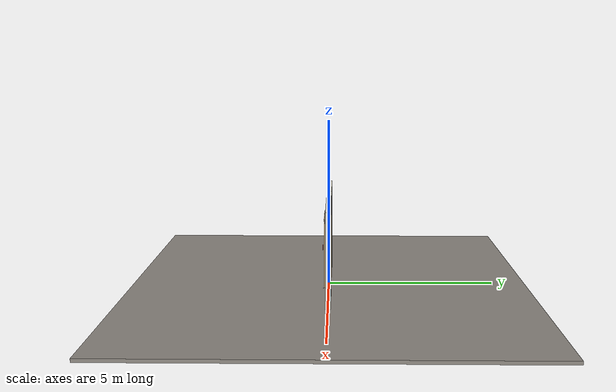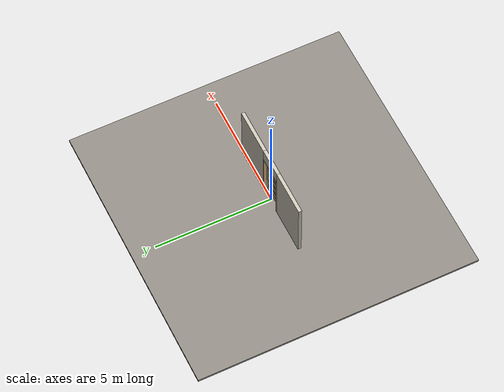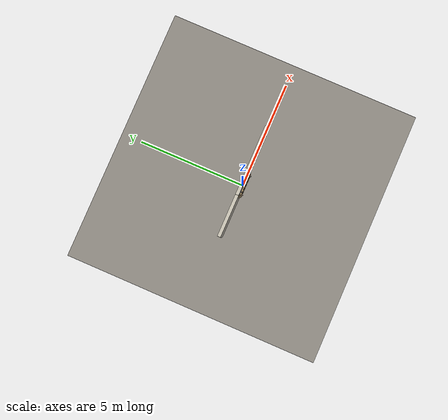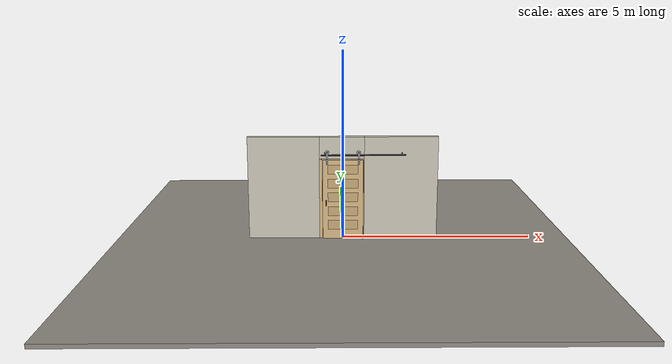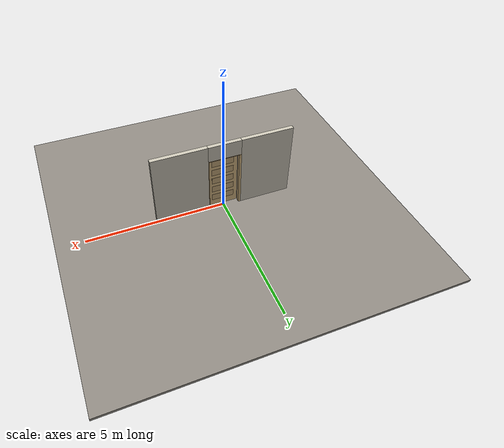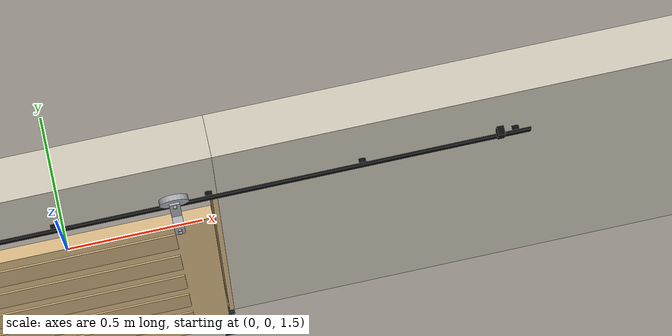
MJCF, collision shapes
<?xml version="1.0" ?>
<mujoco model="db0759_sliding_single_full">
  <compiler angle="radian" meshdir="../../hardware" texturedir="../../textures" autolimits="true" inertiafromgeom="false"/>
  <option timestep="0.002" integrator="implicitfast" cone="elliptic" impratio="10" noslip_iterations="3">
    <flag multiccd="enable"/>
  </option>
  <size memory="16M"/>
  <default>
    <geom condim="4" solref="0.005 1" solimp="0.95 0.99 0.001"/>
    <joint solreflimit="0.005 1" solimplimit="0.95 0.99 0.001"/>
    <tendon solreflimit="0.005 1"/>
    <equality solref="0.002 1"/>
  </default>
  <visual>
    <headlight ambient="0.4 0.4 0.4" diffuse="0.7 0.7 0.7" specular="0.2 0.2 0.2"/>
    <quality shadowsize="4096"/>
    <map znear="0.01" zfar="60"/>
  </visual>
  <asset>
    <mesh name="pull_1e5d69a91a" file="pull_1e5d69a91a.obj"/>
    <material name="mat_floor" rgba="0.55 0.53 0.5 1" specular="0.2" shininess="0.15" reflectance="0"/>
    <material name="mat_wall" rgba="0.78 0.76 0.7 1" specular="0.2" shininess="0.1" reflectance="0"/>
    <material name="mat_frame" rgba="0.82 0.7 0.5 1" specular="0.2" shininess="0.45" reflectance="0"/>
    <material name="mat_track" rgba="0.05 0.05 0.05 1" specular="0.38" shininess="0.3" reflectance="0.12"/>
    <material name="mat_leaf" rgba="0.82 0.7 0.5 1" specular="0.2" shininess="0.45" reflectance="0"/>
    <material name="mat_leaf_panel" rgba="0.754 0.644 0.46 1" specular="0.2" shininess="0.45" reflectance="0"/>
    <material name="mat_roller" rgba="0.65 0.66 0.68 1" specular="0.74" shininess="0.5" reflectance="0.36"/>
    <material name="mat_op_stainless" rgba="0.75 0.76 0.77 1" specular="0.8" shininess="0.65" reflectance="0.4"/>
    <material name="mat_hook" rgba="0.75 0.76 0.77 1" specular="0.8" shininess="0.65" reflectance="0.4"/>
    <texture name="skybox" type="skybox" builtin="gradient" rgb1="0.6 0.7 0.85" rgb2="0.9 0.92 0.95" width="256" height="256"/>
  </asset>
  <worldbody>
    <light name="sun" pos="1.5 -2.5 4" dir="-0.3 0.5 -0.8" directional="true" diffuse="0.8 0.8 0.8" specular="0.3 0.3 0.3" castshadow="true"/>
    <light name="fill" pos="-1.5 2.5 3" dir="0.3 -0.5 -0.7" directional="true" diffuse="0.35 0.35 0.4" castshadow="false"/>
    <camera name="robot_view" pos="0 -2.644375 1.817425" xyaxes="1 0 0 0 0.26963 0.962964" fovy="52"/>
    <camera name="far_view" pos="0 2.644375 1.817425" xyaxes="-1 0 0 0 -0.26963 0.962964" fovy="52"/>
    <camera name="iso" pos="2.009725 -2.221275 2.240525" xyaxes="0.741536 0.670913 0 -0.242917 0.268487 0.932151" fovy="46"/>
    <camera name="detail_handle" pos="-0.2635 -0.9965 1.28" xyaxes="0.97561 0.219512 0 -0.070934 0.315262 0.94635" fovy="38"/>
    <geom name="floor" type="box" size="6 6 0.05" pos="0 0 -0.05" material="mat_floor" group="0" contype="1" conaffinity="1" friction="0.8 0.005 0.0001" density="2400"/>
    <geom name="wall_left" type="box" size="0.93875 0.0725 1.377" pos="-1.56125 0 1.377" material="mat_wall" group="0" contype="1" conaffinity="1" friction="0.6 0.005 0.0001" density="800"/>
    <geom name="wall_right" type="box" size="0.96875 0.0725 1.377" pos="1.53125 0 1.377" material="mat_wall" group="0" contype="1" conaffinity="1" friction="0.6 0.005 0.0001" density="800"/>
    <geom name="wall_header" type="box" size="0.5925 0.0725 0.2905" pos="-0.03 0 2.4635" material="mat_wall" group="0" contype="1" conaffinity="1" friction="0.6 0.005 0.0001" density="800"/>
    <geom name="jamb_r" type="box" size="0.0095 0.0725 1.077" pos="0.553 0 1.077" material="mat_frame" group="0" contype="1" conaffinity="1" friction="0.6 0.005 0.0001" density="300"/>
    <geom name="jamb_head" type="box" size="0.5625 0.0725 0.0095" pos="0 0 2.1635" material="mat_frame" group="0" contype="1" conaffinity="1" friction="0.6 0.005 0.0001" density="300"/>
    <geom name="flat_track" type="box" size="1.117 0.004 0.02" pos="0.5335 -0.0945 2.274" material="mat_track" group="0" contype="1" conaffinity="1" friction="0.6 0.005 0.0001" density="7850"/>
    <geom name="track_standoff_0" type="cylinder" size="0.012 0.009" pos="-0.5335 -0.0815 2.274" quat="0.707107 -0.707107 0 0" material="mat_track" group="1" contype="0" conaffinity="0" density="7850"/>
    <geom name="track_standoff_1" type="cylinder" size="0.012 0.009" pos="0 -0.0815 2.274" quat="0.707107 -0.707107 0 0" material="mat_track" group="1" contype="0" conaffinity="0" density="7850"/>
    <geom name="track_standoff_2" type="cylinder" size="0.012 0.009" pos="0.5335 -0.0815 2.274" quat="0.707107 -0.707107 0 0" material="mat_track" group="1" contype="0" conaffinity="0" density="7850"/>
    <geom name="track_standoff_3" type="cylinder" size="0.012 0.009" pos="1.067 -0.0815 2.274" quat="0.707107 -0.707107 0 0" material="mat_track" group="1" contype="0" conaffinity="0" density="7850"/>
    <geom name="track_standoff_4" type="cylinder" size="0.012 0.009" pos="1.6005 -0.0815 2.274" quat="0.707107 -0.707107 0 0" material="mat_track" group="1" contype="0" conaffinity="0" density="7850"/>
    <geom name="leaf_track_stop_l" type="box" size="0.012 0.016 0.027" pos="-0.4755 -0.0945 2.319" material="mat_track" group="0" contype="1" conaffinity="1" friction="0.6 0.005 0.0001" density="7850"/>
    <geom name="leaf_track_stop_r" type="box" size="0.012 0.016 0.027" pos="1.5425 -0.0945 2.319" material="mat_track" group="0" contype="1" conaffinity="1" friction="0.6 0.005 0.0001" density="7850"/>
    <geom name="jamb_latch_0" type="box" size="0.0395 0.0725 1.077" pos="-0.583 0 1.077" material="mat_frame" group="0" contype="1" conaffinity="1" friction="0.6 0.005 0.0001" density="300"/>
    <geom name="floor_guide_n" type="box" size="0.028 0.004 0.009" pos="0.5335 -0.1415 0.009" material="mat_track" group="0" contype="1" conaffinity="1" friction="0.6 0.005 0.0001" density="7850"/>
    <geom name="floor_guide_n_foot" type="box" size="0.028 0.018 0.002" pos="0.5335 -0.1555 0.002" material="mat_track" group="0" contype="1" conaffinity="1" friction="0.6 0.005 0.0001" density="7850"/>
    <geom name="floor_guide_p" type="box" size="0.028 0.004 0.009" pos="0.5335 -0.0875 0.009" material="mat_track" group="0" contype="1" conaffinity="1" friction="0.6 0.005 0.0001" density="7850"/>
    <geom name="floor_guide_p_foot" type="box" size="0.028 0.018 0.002" pos="0.5335 -0.0735 0.002" material="mat_track" group="0" contype="1" conaffinity="1" friction="0.6 0.005 0.0001" density="7850"/>
    <site name="approach_point" pos="0 -1.5 0" quat="1 0 0 0" size="0.05" rgba="0.2 0.9 0.2 0.5" group="4"/>
    <site name="goal_point" pos="0 1.5 0" quat="1 0 0 0" size="0.05" rgba="0.2 0.9 0.2 0.5" group="4"/>
    <site name="door_plane_center" pos="0 0 1.077" quat="1 0 0 0" size="0.02" rgba="0.2 0.9 0.2 0.5" group="4"/>
    <body name="leaf" pos="0 -0.1145 0">
      <inertial pos="-0.004452 0.000061 1.192302" mass="40.574813" quat="0.500754 -0.50043 -0.500797 -0.498014" diaginertia="4.193941284 18.871940404 23.046878465"/>
      <joint name="leaf_slide" type="slide" axis="1 0 0" limited="true" range="0 1.067" damping="4.028741" frictionloss="47.748359" armature="0.5"/>
      <geom name="leaf_slab" type="box" size="0.5335 0.022 1.067" pos="0 0 1.079" material="mat_leaf" group="0" contype="1" conaffinity="1" friction="0.35 0.005 0.0001" density="1"/>
      <geom name="leaf_panel_0_n" type="box" size="0.39613 0.003 0.123256" pos="0 -0.025 0.389996" material="mat_leaf_panel" group="1" contype="0" conaffinity="0" density="1"/>
      <geom name="leaf_panel_0_p" type="box" size="0.39613 0.003 0.123256" pos="0 0.025 0.389996" material="mat_leaf_panel" group="1" contype="0" conaffinity="0" density="1"/>
      <geom name="leaf_panel_1_n" type="box" size="0.39613 0.003 0.123256" pos="0 -0.025 0.766508" material="mat_leaf_panel" group="1" contype="0" conaffinity="0" density="1"/>
      <geom name="leaf_panel_1_p" type="box" size="0.39613 0.003 0.123256" pos="0 0.025 0.766508" material="mat_leaf_panel" group="1" contype="0" conaffinity="0" density="1"/>
      <geom name="leaf_panel_2_n" type="box" size="0.39613 0.003 0.123256" pos="0 -0.025 1.14302" material="mat_leaf_panel" group="1" contype="0" conaffinity="0" density="1"/>
      <geom name="leaf_panel_2_p" type="box" size="0.39613 0.003 0.123256" pos="0 0.025 1.14302" material="mat_leaf_panel" group="1" contype="0" conaffinity="0" density="1"/>
      <geom name="leaf_panel_3_n" type="box" size="0.39613 0.003 0.123256" pos="0 -0.025 1.519532" material="mat_leaf_panel" group="1" contype="0" conaffinity="0" density="1"/>
      <geom name="leaf_panel_3_p" type="box" size="0.39613 0.003 0.123256" pos="0 0.025 1.519532" material="mat_leaf_panel" group="1" contype="0" conaffinity="0" density="1"/>
      <geom name="leaf_panel_4_n" type="box" size="0.39613 0.003 0.123256" pos="0 -0.025 1.896044" material="mat_leaf_panel" group="1" contype="0" conaffinity="0" density="1"/>
      <geom name="leaf_panel_4_p" type="box" size="0.39613 0.003 0.123256" pos="0 0.025 1.896044" material="mat_leaf_panel" group="1" contype="0" conaffinity="0" density="1"/>
      <geom name="leaf_hanger_wheel_0" type="cylinder" size="0.05 0.01" pos="-0.4135 0.02 2.344" quat="0.707107 -0.707107 0 0" material="mat_roller" group="1" contype="0" conaffinity="0" density="7850"/>
      <geom name="leaf_hanger_mount_0" type="box" size="0.018 0.004 0.0725" pos="-0.4135 -0.026 2.0985" material="mat_roller" group="1" contype="0" conaffinity="0" density="7850"/>
      <geom name="leaf_hanger_strap_0" type="box" size="0.018 0.004 0.0925" pos="-0.4135 0.006 2.2635" material="mat_roller" group="1" contype="0" conaffinity="0" density="7850"/>
      <geom name="leaf_hanger_bend_0" type="box" size="0.018 0.02 0.004" pos="-0.4135 -0.01 2.171" material="mat_roller" group="1" contype="0" conaffinity="0" density="7850"/>
      <geom name="leaf_hanger_axle_0" type="cylinder" size="0.006 0.021" pos="-0.4135 0.013 2.344" quat="0.707107 -0.707107 0 0" material="mat_roller" group="1" contype="0" conaffinity="0" density="7850"/>
      <geom name="leaf_hanger_bolt_0_90" type="cylinder" size="0.007 0.004" pos="-0.4135 -0.032 2.056" quat="0.707107 -0.707107 0 0" material="mat_roller" group="1" contype="0" conaffinity="0" density="7850"/>
      <geom name="leaf_hanger_bolt_0_45" type="cylinder" size="0.007 0.004" pos="-0.4135 -0.032 2.101" quat="0.707107 -0.707107 0 0" material="mat_roller" group="1" contype="0" conaffinity="0" density="7850"/>
      <geom name="leaf_hanger_wheel_1" type="cylinder" size="0.05 0.01" pos="0.4135 0.02 2.344" quat="0.707107 -0.707107 0 0" material="mat_roller" group="1" contype="0" conaffinity="0" density="7850"/>
      <geom name="leaf_hanger_mount_1" type="box" size="0.018 0.004 0.0725" pos="0.4135 -0.026 2.0985" material="mat_roller" group="1" contype="0" conaffinity="0" density="7850"/>
      <geom name="leaf_hanger_strap_1" type="box" size="0.018 0.004 0.0925" pos="0.4135 0.006 2.2635" material="mat_roller" group="1" contype="0" conaffinity="0" density="7850"/>
      <geom name="leaf_hanger_bend_1" type="box" size="0.018 0.02 0.004" pos="0.4135 -0.01 2.171" material="mat_roller" group="1" contype="0" conaffinity="0" density="7850"/>
      <geom name="leaf_hanger_axle_1" type="cylinder" size="0.006 0.021" pos="0.4135 0.013 2.344" quat="0.707107 -0.707107 0 0" material="mat_roller" group="1" contype="0" conaffinity="0" density="7850"/>
      <geom name="leaf_hanger_bolt_1_90" type="cylinder" size="0.007 0.004" pos="0.4135 -0.032 2.056" quat="0.707107 -0.707107 0 0" material="mat_roller" group="1" contype="0" conaffinity="0" density="7850"/>
      <geom name="leaf_hanger_bolt_1_45" type="cylinder" size="0.007 0.004" pos="0.4135 -0.032 2.101" quat="0.707107 -0.707107 0 0" material="mat_roller" group="1" contype="0" conaffinity="0" density="7850"/>
      <geom name="leaf_pull_n" type="mesh" mesh="pull_1e5d69a91a" pos="-0.4435 -0.022 1" quat="0 0 -0.707107 0.707107" material="mat_op_stainless" group="1" contype="0" conaffinity="0" density="3000"/>
      <geom name="leaf_pull_col_n" type="capsule" size="0.0095 0.08" pos="-0.4435 -0.082 1" material="mat_op_stainless" group="3" contype="1" conaffinity="1" rgba="0.8 0.3 0.3 0.25" friction="0.7 0.01 0.0001" density="3000"/>
      <site name="leaf_pull_grip_n" pos="-0.4435 -0.082 1" quat="1 0 0 0" size="0.012" rgba="0.2 0.9 0.2 0.5" group="4"/>
      <site name="leaf_edge_mid" pos="-0.5335 0 1.079" quat="1 0 0 0" size="0.02" rgba="0.2 0.9 0.2 0.5" group="4"/>
    </body>
  </worldbody>
  <sensor>
    <jointpos name="leaf_slide_pos" joint="leaf_slide"/>
    <jointvel name="leaf_slide_vel" joint="leaf_slide"/>
  </sensor>
</mujoco>
